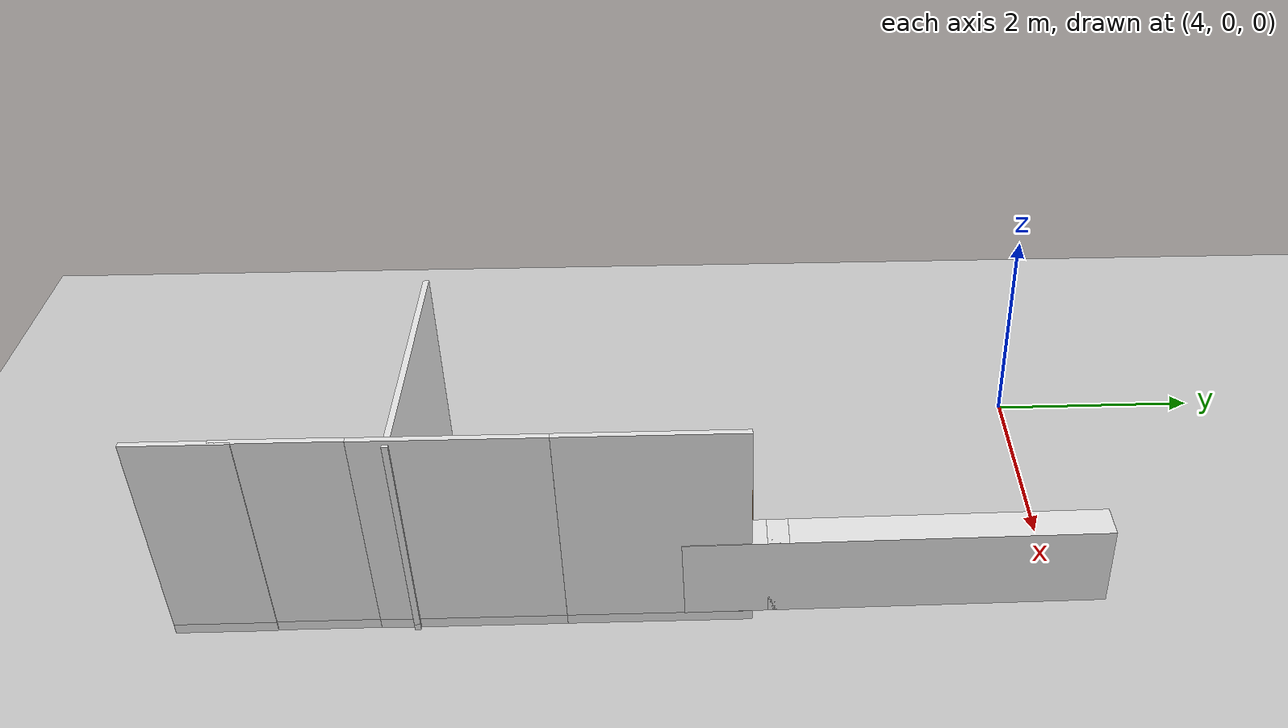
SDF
<sdf version="1.6">
 <world name="default">
  <model name="ground_plane">
   <static>1</static>
   <link name="link">
    <collision name="collision">
     <geometry><plane><normal>0 0 1</normal><size>100 100</size></plane></geometry>
     <surface><friction><ode><mu>100</mu><mu2>50</mu2></ode></friction></surface>
    </collision>
    <visual name="visual">
     <cast_shadows>0</cast_shadows>
     <geometry><plane><normal>0 0 1</normal><size>100 100</size></plane></geometry>
     <material>
      <script><uri>file://media/materials/scripts/gazebo.material</uri><name>Gazebo/Grey</name></script>
     </material>
    </visual>
   </link>
  </model>
  <model name="full_wall_55_6475_bedroom">
   <link name="link">
    <pose>0 2.44347 0 0 -0 0</pose>
    <inertial>
     <mass>12.7126</mass>
     <inertia><ixx>0</ixx><ixy>0</ixy><ixz>0</ixz><iyy>0</iyy><iyz>0</iyz><izz>0</izz></inertia>
    </inertial>
    <velocity_decay><linear>0</linear><angular>0</angular></velocity_decay>
    <visual name="bottom_frame">
     <pose>0 0 0.05 0 -0 0</pose>
     <geometry><box><size>0.055 1.64629 0.1</size></box></geometry>
     <material>
      <script><uri>model://base_materials/color/scripts</uri><name>hsr_color/white</name></script>
      <ambient>1 1 1 1</ambient>
      <diffuse>0.5 0.5 0.5 1</diffuse>
      <specular>0 0 0 1</specular>
      <emissive>0 0 0 1</emissive>
     </material>
    </visual>
    <visual name="wall">
     <pose>0 0 1.095 0 -0 0</pose>
     <geometry><box><size>0.055 1.64629 1.99</size></box></geometry>
     <material>
      <script>
       <uri>model://base_materials/wall/scripts</uri>
       <uri>model://base_materials/wall/textures</uri>
       <name>wall/white_noise</name>
      </script>
      <ambient>1 1 1 1</ambient>
      <diffuse>0.5 0.5 0.5 1</diffuse>
      <specular>0 0 0 1</specular>
      <emissive>0 0 0 1</emissive>
     </material>
    </visual>
    <collision name="collision_bottom_frame">
     <pose>0 0 0.05 0 -0 0</pose>
     <geometry><box><size>0.055 1.64629 0.1</size></box></geometry>
     <surface>
      <friction>
       <ode><mu>1</mu><mu2>1</mu2><fdir1>0 0 0</fdir1><slip1>0</slip1><slip2>0</slip2></ode>
       <torsional>
        <coefficient>1</coefficient>
        <patch_radius>0</patch_radius>
        <surface_radius>0</surface_radius>
        <use_patch_radius>1</use_patch_radius>
        <ode><slip>0</slip></ode>
       </torsional>
      </friction>
      <bounce><restitution_coefficient>0</restitution_coefficient><threshold>1e+06</threshold></bounce>
      <contact>
       <collide_without_contact>0</collide_without_contact>
       <collide_without_contact_bitmask>1</collide_without_contact_bitmask>
       <collide_bitmask>1</collide_bitmask>
       <ode>
        <soft_cfm>0</soft_cfm>
        <soft_erp>0.2</soft_erp>
        <kp>1e+13</kp>
        <kd>1</kd>
        <max_vel>0.01</max_vel>
        <min_depth>0</min_depth>
       </ode>
       <bullet>
        <split_impulse>1</split_impulse>
        <split_impulse_penetration_threshold>-0.01</split_impulse_penetration_threshold>
        <soft_cfm>0</soft_cfm>
        <soft_erp>0.2</soft_erp>
        <kp>1e+13</kp>
        <kd>1</kd>
       </bullet>
      </contact>
     </surface>
    </collision>
    <collision name="collision_wall">
     <pose>0 0 1.095 0 -0 0</pose>
     <geometry><box><size>0.055 1.64629 1.99</size></box></geometry>
     <surface>
      <friction>
       <ode><mu>1</mu><mu2>1</mu2><fdir1>0 0 0</fdir1><slip1>0</slip1><slip2>0</slip2></ode>
       <torsional>
        <coefficient>1</coefficient>
        <patch_radius>0</patch_radius>
        <surface_radius>0</surface_radius>
        <use_patch_radius>1</use_patch_radius>
        <ode><slip>0</slip></ode>
       </torsional>
      </friction>
      <bounce><restitution_coefficient>0</restitution_coefficient><threshold>1e+06</threshold></bounce>
      <contact>
       <collide_without_contact>0</collide_without_contact>
       <collide_without_contact_bitmask>1</collide_without_contact_bitmask>
       <collide_bitmask>1</collide_bitmask>
       <ode>
        <soft_cfm>0</soft_cfm>
        <soft_erp>0.2</soft_erp>
        <kp>1e+13</kp>
        <kd>1</kd>
        <max_vel>0.01</max_vel>
        <min_depth>0</min_depth>
       </ode>
       <bullet>
        <split_impulse>1</split_impulse>
        <split_impulse_penetration_threshold>-0.01</split_impulse_penetration_threshold>
        <soft_cfm>0</soft_cfm>
        <soft_erp>0.2</soft_erp>
        <kp>1e+13</kp>
        <kd>1</kd>
       </bullet>
      </contact>
     </surface>
    </collision>
   </link>
   <static>1</static>
   <pose>7.0633 -7.6556 0 0 -0 0</pose>
  </model>
  <model name="full_wall_55_6475_bedroom_clone">
   <link name="link">
    <pose>0 2.44347 0 0 -0 0</pose>
    <inertial>
     <mass>12.7126</mass>
     <inertia><ixx>0</ixx><ixy>0</ixy><ixz>0</ixz><iyy>0</iyy><iyz>0</iyz><izz>0</izz></inertia>
    </inertial>
    <velocity_decay><linear>0</linear><angular>0</angular></velocity_decay>
    <visual name="bottom_frame">
     <pose>0 0 0.05 0 -0 0</pose>
     <geometry><box><size>0.055 1.64629 0.1</size></box></geometry>
     <material>
      <script><uri>model://base_materials/color/scripts</uri><name>hsr_color/white</name></script>
      <ambient>1 1 1 1</ambient>
      <diffuse>0.5 0.5 0.5 1</diffuse>
      <specular>0 0 0 1</specular>
      <emissive>0 0 0 1</emissive>
     </material>
    </visual>
    <visual name="wall">
     <pose>0 0 1.095 0 -0 0</pose>
     <geometry><box><size>0.055 1.64629 1.99</size></box></geometry>
     <material>
      <script>
       <uri>model://base_materials/wall/scripts</uri>
       <uri>model://base_materials/wall/textures</uri>
       <name>wall/white_noise</name>
      </script>
      <ambient>1 1 1 1</ambient>
      <diffuse>0.5 0.5 0.5 1</diffuse>
      <specular>0 0 0 1</specular>
      <emissive>0 0 0 1</emissive>
     </material>
    </visual>
    <collision name="collision_bottom_frame">
     <pose>0 0 0.05 0 -0 0</pose>
     <geometry><box><size>0.055 1.64629 0.1</size></box></geometry>
     <surface>
      <friction>
       <ode><mu>1</mu><mu2>1</mu2><fdir1>0 0 0</fdir1><slip1>0</slip1><slip2>0</slip2></ode>
       <torsional>
        <coefficient>1</coefficient>
        <patch_radius>0</patch_radius>
        <surface_radius>0</surface_radius>
        <use_patch_radius>1</use_patch_radius>
        <ode><slip>0</slip></ode>
       </torsional>
      </friction>
      <bounce><restitution_coefficient>0</restitution_coefficient><threshold>1e+06</threshold></bounce>
      <contact>
       <collide_without_contact>0</collide_without_contact>
       <collide_without_contact_bitmask>1</collide_without_contact_bitmask>
       <collide_bitmask>1</collide_bitmask>
       <ode>
        <soft_cfm>0</soft_cfm>
        <soft_erp>0.2</soft_erp>
        <kp>1e+13</kp>
        <kd>1</kd>
        <max_vel>0.01</max_vel>
        <min_depth>0</min_depth>
       </ode>
       <bullet>
        <split_impulse>1</split_impulse>
        <split_impulse_penetration_threshold>-0.01</split_impulse_penetration_threshold>
        <soft_cfm>0</soft_cfm>
        <soft_erp>0.2</soft_erp>
        <kp>1e+13</kp>
        <kd>1</kd>
       </bullet>
      </contact>
     </surface>
    </collision>
    <collision name="collision_wall">
     <pose>0 0 1.095 0 -0 0</pose>
     <geometry><box><size>0.055 1.64629 1.99</size></box></geometry>
     <surface>
      <friction>
       <ode><mu>1</mu><mu2>1</mu2><fdir1>0 0 0</fdir1><slip1>0</slip1><slip2>0</slip2></ode>
       <torsional>
        <coefficient>1</coefficient>
        <patch_radius>0</patch_radius>
        <surface_radius>0</surface_radius>
        <use_patch_radius>1</use_patch_radius>
        <ode><slip>0</slip></ode>
       </torsional>
      </friction>
      <bounce><restitution_coefficient>0</restitution_coefficient><threshold>1e+06</threshold></bounce>
      <contact>
       <collide_without_contact>0</collide_without_contact>
       <collide_without_contact_bitmask>1</collide_without_contact_bitmask>
       <collide_bitmask>1</collide_bitmask>
       <ode>
        <soft_cfm>0</soft_cfm>
        <soft_erp>0.2</soft_erp>
        <kp>1e+13</kp>
        <kd>1</kd>
        <max_vel>0.01</max_vel>
        <min_depth>0</min_depth>
       </ode>
       <bullet>
        <split_impulse>1</split_impulse>
        <split_impulse_penetration_threshold>-0.01</split_impulse_penetration_threshold>
        <soft_cfm>0</soft_cfm>
        <soft_erp>0.2</soft_erp>
        <kp>1e+13</kp>
        <kd>1</kd>
       </bullet>
      </contact>
     </surface>
    </collision>
   </link>
   <static>1</static>
   <pose>7.0618 -6.01135 0 0 -0 0</pose>
  </model>
  <model name="full_wall_55_1100_2090_6">
   <link name="link">
    <inertial>
     <mass>50</mass>
     <inertia><ixx>1</ixx><ixy>0</ixy><ixz>0</ixz><iyy>1</iyy><iyz>0</iyz><izz>1</izz></inertia>
    </inertial>
    <visual name="bottom_frame">
     <pose>0 0 0.05 0 -0 0</pose>
     <geometry><box><size>0.055 1.1 0.1</size></box></geometry>
     <material>
      <script><uri>model://base_materials/color/scripts</uri><name>hsr_color/white</name></script>
     </material>
    </visual>
    <collision name="collision_bottom_frame">
     <pose>0 0 0.05 0 -0 0</pose>
     <geometry><box><size>0.055 1.1 0.1</size></box></geometry>
    </collision>
    <visual name="wall">
     <pose>0 0 1.095 0 -0 0</pose>
     <geometry><box><size>0.055 1.1 1.99</size></box></geometry>
     <material>
      <script>
       <uri>model://base_materials/wall/scripts</uri>
       <uri>model://base_materials/wall/textures</uri>
       <name>wall/white_noise</name>
      </script>
     </material>
    </visual>
    <collision name="collision_wall">
     <pose>0 0 1.095 0 -0 0</pose>
     <geometry><box><size>0.055 1.1 1.99</size></box></geometry>
    </collision>
    <velocity_decay><linear>0</linear><angular>0</angular></velocity_decay>
   </link>
   <static>1</static>
   <pose>7.05797 -6.58558 0 0 -0 0</pose>
  </model>
  <model name="full_wall_55_900_2090_2">
   <link name="link">
    <inertial>
     <mass>50</mass>
     <inertia><ixx>1</ixx><ixy>0</ixy><ixz>0</ixz><iyy>1</iyy><iyz>0</iyz><izz>1</izz></inertia>
    </inertial>
    <visual name="bottom_frame">
     <pose>0 0 0.05 0 -0 0</pose>
     <geometry><box><size>0.055 0.9 0.1</size></box></geometry>
     <material>
      <script><uri>model://base_materials/color/scripts</uri><name>hsr_color/white</name></script>
     </material>
    </visual>
    <collision name="collision_bottom_frame">
     <pose>0 0 0.05 0 -0 0</pose>
     <geometry><box><size>0.055 0.9 0.1</size></box></geometry>
    </collision>
    <visual name="wall">
     <pose>0 0 1.095 0 -0 0</pose>
     <geometry><box><size>0.055 0.9 1.99</size></box></geometry>
     <material>
      <script>
       <uri>model://base_materials/wall/scripts</uri>
       <uri>model://base_materials/wall/textures</uri>
       <name>wall/white_noise</name>
      </script>
     </material>
    </visual>
    <collision name="collision_wall">
     <pose>0 0 1.095 0 -0 0</pose>
     <geometry><box><size>0.055 0.9 1.99</size></box></geometry>
    </collision>
    <velocity_decay><linear>0</linear><angular>0</angular></velocity_decay>
   </link>
   <static>1</static>
   <pose>7.0657 -7.39424 0 0 -0 0</pose>
  </model>
  <model name="office_desk">
   <link name="link">
    <inertial>
     <mass>10</mass>
     <inertia><ixx>1</ixx><ixy>0</ixy><ixz>0</ixz><iyy>1</iyy><iyz>0</iyz><izz>1</izz></inertia>
    </inertial>
    <visual name="top_board">
     <pose>-0.3 0.6 0.69 0 -0 0</pose>
     <geometry><box><size>0.6 1.2 0.02</size></box></geometry>
     <material>
      <script>
       <uri>model://base_materials/wood/scripts/wood.material</uri>
       <name>base_materials/dark_wood</name>
      </script>
     </material>
    </visual>
    <collision name="collision_top_board">
     <pose>-0.3 0.6 0.69 0 -0 0</pose>
     <geometry><box><size>0.6 1.2 0.02</size></box></geometry>
    </collision>
    <visual name="left_board">
     <pose>-0.3 0.01 0.34 0 -0 0</pose>
     <geometry><box><size>0.6 0.02 0.68</size></box></geometry>
     <material>
      <script>
       <uri>model://base_materials/wood/scripts/wood.material</uri>
       <name>base_materials/dark_wood</name>
      </script>
     </material>
    </visual>
    <collision name="collision_left_board">
     <pose>-0.3 0.01 0.34 0 -0 0</pose>
     <geometry><box><size>0.6 0.02 0.68</size></box></geometry>
    </collision>
    <visual name="right_board">
     <pose>-0.3 1.19 0.34 0 -0 0</pose>
     <geometry><box><size>0.6 0.02 0.68</size></box></geometry>
     <material>
      <script>
       <uri>model://base_materials/wood/scripts/wood.material</uri>
       <name>base_materials/dark_wood</name>
      </script>
     </material>
    </visual>
    <collision name="collision_right_board">
     <pose>-0.3 1.19 0.34 0 -0 0</pose>
     <geometry><box><size>0.6 0.02 0.68</size></box></geometry>
    </collision>
    <visual name="center_board">
     <pose>-0.14 0.6 0.49 0 -0 0</pose>
     <geometry><box><size>0.02 1.16 0.4</size></box></geometry>
     <material>
      <script>
       <uri>model://base_materials/wood/scripts/wood.material</uri>
       <name>base_materials/dark_wood</name>
      </script>
     </material>
    </visual>
    <collision name="ollision_center_board">
     <pose>-0.14 0.6 0.49 0 -0 0</pose>
     <geometry><box><size>0.02 1.16 0.4</size></box></geometry>
    </collision>
    <velocity_decay><linear>0</linear><angular>0</angular></velocity_decay>
   </link>
   <static>1</static>
   <pose>5.54063 -4.0713 0 0 0 -1.54079</pose>
  </model>
  <model name="wagon_with_marker">
   <link name="link">
    <inertial>
     <mass>10</mass>
     <inertia><ixx>1</ixx><ixy>0</ixy><ixz>0</ixz><iyy>1</iyy><iyz>0</iyz><izz>1</izz></inertia>
    </inertial>
    <visual name="left_board">
     <pose>-0.2325 0.01 0.345 0 -0 0</pose>
     <geometry><box><size>0.415 0.02 0.59</size></box></geometry>
     <material>
      <script><uri>model://base_materials/wood/scripts/wood.material</uri><name>base_materials/wood</name></script>
     </material>
    </visual>
    <collision name="collision_left_board">
     <pose>-0.2325 0.01 0.345 0 -0 0</pose>
     <geometry><box><size>0.415 0.02 0.59</size></box></geometry>
    </collision>
    <visual name="right_board">
     <pose>-0.2325 0.4325 0.345 0 -0 0</pose>
     <geometry><box><size>0.415 0.02 0.59</size></box></geometry>
     <material>
      <script><uri>model://base_materials/wood/scripts/wood.material</uri><name>base_materials/wood</name></script>
     </material>
    </visual>
    <collision name="collision_right_board">
     <pose>-0.2325 0.4325 0.345 0 -0 0</pose>
     <geometry><box><size>0.415 0.02 0.59</size></box></geometry>
    </collision>
    <visual name="top_board">
     <pose>-0.22 0.2225 0.655 0 -0 0</pose>
     <geometry><box><size>0.44 0.445 0.03</size></box></geometry>
     <material>
      <script><uri>model://base_materials/wood/scripts/wood.material</uri><name>base_materials/wood</name></script>
     </material>
    </visual>
    <collision name="collision_top_board">
     <pose>-0.22 0.2225 0.655 0 -0 0</pose>
     <geometry><box><size>0.44 0.445 0.03</size></box></geometry>
    </collision>
    <visual name="back_board">
     <pose>-0.425 0.2225 0.345 0 -0 0</pose>
     <geometry><box><size>0.02 0.405 0.59</size></box></geometry>
     <material>
      <script><uri>model://base_materials/wood/scripts/wood.material</uri><name>base_materials/wood</name></script>
     </material>
    </visual>
    <collision name="collision_back_board">
     <pose>-0.425 0.2225 0.345 0 -0 0</pose>
     <geometry><box><size>0.02 0.405 0.59</size></box></geometry>
    </collision>
    <visual name="bottom_board">
     <pose>-0.2325 0.2225 0.06 0 -0 0</pose>
     <geometry><box><size>0.415 0.405 0.02</size></box></geometry>
     <material>
      <script><uri>model://base_materials/wood/scripts/wood.material</uri><name>base_materials/wood</name></script>
     </material>
    </visual>
    <collision name="collision_bottom_board">
     <pose>-0.2325 0.2225 0.06 0 -0 0</pose>
     <geometry><box><size>0.415 0.405 0.02</size></box></geometry>
    </collision>
    <visual name="1st_drawer">
     <pose>-0.0125 0.2225 0.57 0 -0 0</pose>
     <geometry><box><size>0.025 0.445 0.14</size></box></geometry>
     <material>
      <script><uri>model://base_materials/wood/scripts/wood.material</uri><name>base_materials/wood</name></script>
     </material>
    </visual>
    <collision name="collision_1st_drawer">
     <pose>-0.0125 0.2225 0.57 0 -0 0</pose>
     <geometry><box><size>0.025 0.445 0.14</size></box></geometry>
    </collision>
    <visual name="1st_drawer_handle_l1">
     <pose>0.0115 0.1895 0.6 3.14159 1.57079 3.14159</pose>
     <geometry><cylinder><radius>0.007</radius><length>0.023</length></cylinder></geometry>
     <material>
      <ambient>0.18431 0.3098 0.3098 1</ambient>
      <diffuse>0.18431 0.3098 0.3098 1</diffuse>
      <specular>0.1 0.1 0.1 1</specular>
     </material>
    </visual>
    <collision name="collision_1st_drawer_handle_l1">
     <pose>0.0115 0.1895 0.6 3.14159 1.57079 3.14159</pose>
     <geometry><cylinder><radius>0.007</radius><length>0.023</length></cylinder></geometry>
    </collision>
    <visual name="1st_drawer_handle_l2">
     <pose>0.023 0.1895 0.6 0 -0 0</pose>
     <geometry><sphere><radius>0.007</radius></sphere></geometry>
     <material>
      <ambient>0.18431 0.3098 0.3098 1</ambient>
      <diffuse>0.18431 0.3098 0.3098 1</diffuse>
      <specular>0.1 0.1 0.1 1</specular>
     </material>
    </visual>
    <collision name="collision_1st_drawer_handle_l2">
     <pose>0.023 0.1895 0.6 0 -0 0</pose>
     <geometry><sphere><radius>0.007</radius></sphere></geometry>
    </collision>
    <visual name="1st_drawer_handle_r1">
     <pose>0.0115 0.2555 0.6 3.14159 1.57079 3.14159</pose>
     <geometry><cylinder><radius>0.007</radius><length>0.023</length></cylinder></geometry>
     <material>
      <ambient>0.18431 0.3098 0.3098 1</ambient>
      <diffuse>0.18431 0.3098 0.3098 1</diffuse>
      <specular>0.1 0.1 0.1 1</specular>
     </material>
    </visual>
    <collision name="collision_1st_drawer_handle_r1">
     <pose>0.0115 0.2555 0.6 3.14159 1.57079 3.14159</pose>
     <geometry><cylinder><radius>0.007</radius><length>0.023</length></cylinder></geometry>
    </collision>
    <visual name="1st_drawer_handle_r2">
     <pose>0.023 0.2555 0.6 0 -0 0</pose>
     <geometry><sphere><radius>0.007</radius></sphere></geometry>
     <material>
      <ambient>0.18431 0.3098 0.3098 1</ambient>
      <diffuse>0.18431 0.3098 0.3098 1</diffuse>
      <specular>0.1 0.1 0.1 1</specular>
     </material>
    </visual>
    <collision name="collision_1st_drawer_handle_r2">
     <pose>0.023 0.2555 0.6 0 -0 0</pose>
     <geometry><sphere><radius>0.007</radius></sphere></geometry>
    </collision>
    <visual name="1st_drawer_handle_center">
     <pose>0.023 0.2225 0.6 1.5708 -0 0</pose>
     <geometry><cylinder><radius>0.007</radius><length>0.066</length></cylinder></geometry>
     <material>
      <ambient>0.18431 0.3098 0.3098 1</ambient>
      <diffuse>0.18431 0.3098 0.3098 1</diffuse>
      <specular>0.1 0.1 0.1 1</specular>
     </material>
    </visual>
    <collision name="collision_1st_drawer_handle_center">
     <pose>0.023 0.2225 0.6 1.5708 -0 0</pose>
     <geometry><cylinder><radius>0.007</radius><length>0.066</length></cylinder></geometry>
    </collision>
    <visual name="2nd_drawer">
     <pose>-0.0125 0.2225 0.275 0 -0 0</pose>
     <geometry><box><size>0.025 0.445 0.45</size></box></geometry>
     <material>
      <script><uri>model://base_materials/wood/scripts/wood.material</uri><name>base_materials/wood</name></script>
     </material>
    </visual>
    <collision name="collision_2nd_drawer">
     <pose>-0.0125 0.2225 0.275 0 -0 0</pose>
     <geometry><box><size>0.025 0.445 0.45</size></box></geometry>
    </collision>
    <visual name="2nd_drawer_handle_top1">
     <pose>0.0115 0.04 0.47 3.14159 1.57079 3.14159</pose>
     <geometry><cylinder><radius>0.007</radius><length>0.023</length></cylinder></geometry>
     <material>
      <ambient>0.18431 0.3098 0.3098 1</ambient>
      <diffuse>0.18431 0.3098 0.3098 1</diffuse>
      <specular>0.1 0.1 0.1 1</specular>
     </material>
    </visual>
    <collision name="collision_2nd_drawer_handle_top1">
     <pose>0.0115 0.04 0.47 3.14159 1.57079 3.14159</pose>
     <geometry><cylinder><radius>0.007</radius><length>0.023</length></cylinder></geometry>
    </collision>
    <visual name="2nd_drawer_handle_top2">
     <pose>0.023 0.04 0.47 0 -0 0</pose>
     <geometry><sphere><radius>0.007</radius></sphere></geometry>
     <material>
      <ambient>0.18431 0.3098 0.3098 1</ambient>
      <diffuse>0.18431 0.3098 0.3098 1</diffuse>
      <specular>0.1 0.1 0.1 1</specular>
     </material>
    </visual>
    <collision name="2nd_drawer_handle_top2">
     <pose>0.023 0.04 0.47 0 -0 0</pose>
     <geometry><sphere><radius>0.007</radius></sphere></geometry>
    </collision>
    <visual name="2nd_drawer_handle_bottom1">
     <pose>0.0115 0.04 0.404 3.14159 1.57079 3.14159</pose>
     <geometry><cylinder><radius>0.007</radius><length>0.023</length></cylinder></geometry>
     <material>
      <ambient>0.18431 0.3098 0.3098 1</ambient>
      <diffuse>0.18431 0.3098 0.3098 1</diffuse>
      <specular>0.1 0.1 0.1 1</specular>
     </material>
    </visual>
    <collision name="collision_2nd_drawer_handle_bottom1">
     <pose>0.0115 0.04 0.404 3.14159 1.57079 3.14159</pose>
     <geometry><cylinder><radius>0.007</radius><length>0.023</length></cylinder></geometry>
    </collision>
    <visual name="2nd_drawer_handle_bottom2">
     <pose>0.023 0.04 0.404 0 -0 0</pose>
     <geometry><sphere><radius>0.007</radius></sphere></geometry>
     <material>
      <ambient>0.18431 0.3098 0.3098 1</ambient>
      <diffuse>0.18431 0.3098 0.3098 1</diffuse>
      <specular>0.1 0.1 0.1 1</specular>
     </material>
    </visual>
    <collision name="2nd_drawer_handle_bottom2">
     <pose>0.023 0.04 0.404 0 -0 0</pose>
     <geometry><sphere><radius>0.007</radius></sphere></geometry>
    </collision>
    <visual name="2nd_drawer_handle_center">
     <pose>0.023 0.04 0.437 0 -0 0</pose>
     <geometry><cylinder><radius>0.007</radius><length>0.066</length></cylinder></geometry>
     <material>
      <ambient>0.18431 0.3098 0.3098 1</ambient>
      <diffuse>0.18431 0.3098 0.3098 1</diffuse>
      <specular>0.1 0.1 0.1 1</specular>
     </material>
    </visual>
    <collision name="collision_2nd_drawer_handle_center">
     <pose>0.023 0.04 0.437 0 -0 0</pose>
     <geometry><cylinder><radius>0.007</radius><length>0.066</length></cylinder></geometry>
    </collision>
    <visual name="left_front_caster">
     <pose>-0.07 0.025 0.025 3.14159 1.57079 3.14159</pose>
     <geometry><cylinder><radius>0.025</radius><length>0.035</length></cylinder></geometry>
     <material><script><name>Gazebo/Black</name><uri>__default__</uri></script></material>
    </visual>
    <collision name="collision_left_front_caster">
     <pose>-0.07 0.025 0.025 3.14159 1.57079 3.14159</pose>
     <geometry><cylinder><radius>0.025</radius><length>0.035</length></cylinder></geometry>
    </collision>
    <visual name="right_front_caster">
     <pose>-0.07 0.42 0.025 3.14159 1.57079 3.14159</pose>
     <geometry><cylinder><radius>0.025</radius><length>0.035</length></cylinder></geometry>
     <material><script><name>Gazebo/Black</name><uri>__default__</uri></script></material>
    </visual>
    <collision name="collision_right_front_caster">
     <pose>-0.07 0.42 0.025 3.14159 1.57079 3.14159</pose>
     <geometry><cylinder><radius>0.025</radius><length>0.035</length></cylinder></geometry>
    </collision>
    <visual name="left_back_caster">
     <pose>-0.39 0.025 0.025 3.14159 1.57079 3.14159</pose>
     <geometry><cylinder><radius>0.025</radius><length>0.035</length></cylinder></geometry>
     <material><script><name>Gazebo/Black</name><uri>__default__</uri></script></material>
    </visual>
    <collision name="collision_left_back_caster">
     <pose>-0.39 0.025 0.025 3.14159 1.57079 3.14159</pose>
     <geometry><cylinder><radius>0.025</radius><length>0.035</length></cylinder></geometry>
    </collision>
    <visual name="right_back_caster">
     <pose>-0.39 0.42 0.025 3.14159 1.57079 3.14159</pose>
     <geometry><cylinder><radius>0.025</radius><length>0.035</length></cylinder></geometry>
     <material><script><name>Gazebo/Black</name><uri>__default__</uri></script></material>
    </visual>
    <collision name="collision_right_back_caster">
     <pose>-0.39 0.42 0.025 3.14159 1.57079 3.14159</pose>
     <geometry><cylinder><radius>0.025</radius><length>0.035</length></cylinder></geometry>
    </collision>
    <visual name="marker_0012">
     <pose>0 0.045 0.595 3.14159 1.57079 -9.3e-05</pose>
     <geometry><box><size>0.09 0.09 0.0001</size></box></geometry>
     <material>
      <script>
       <uri>model://marker/0012/scripts</uri>
       <uri>model://marker/0012/textures</uri>
       <name>Marker/0012</name>
      </script>
     </material>
    </visual>
    <velocity_decay><linear>0</linear><angular>0</angular></velocity_decay>
   </link>
   <static>1</static>
   <pose>5.70521 -3.13383 0 0.000182 -0.005186 -1.60578</pose>
  </model>
  <model name="full_wall_bedroom_dinning_clone">
   <link name="link">
    <pose>0 -0.717261 0 0 -0 0</pose>
    <inertial>
     <mass>141.74</mass>
     <inertia><ixx>123.66</ixx><ixy>0</ixy><ixz>0</ixz><iyy>46.811</iyy><iyz>0</iyz><izz>76.9205</izz></inertia>
    </inertial>
    <velocity_decay><linear>0</linear><angular>0</angular></velocity_decay>
    <visual name="wall">
     <pose>0 0 1.095 0 -0 0</pose>
     <geometry><box><size>0.055 2.55132 1.99</size></box></geometry>
     <material>
      <script>
       <uri>model://base_materials/wall/scripts</uri>
       <uri>model://base_materials/wall/textures</uri>
       <name>wall/white_noise</name>
      </script>
      <ambient>1 1 1 1</ambient>
      <diffuse>0.5 0.5 0.5 1</diffuse>
      <specular>0 0 0 1</specular>
      <emissive>0 0 0 1</emissive>
     </material>
    </visual>
    <visual name="bottom_frame">
     <pose>0 0 0.05 0 -0 0</pose>
     <geometry><box><size>0.055 2.55132 0.1</size></box></geometry>
     <material>
      <script><uri>model://base_materials/color/scripts</uri><name>hsr_color/white</name></script>
      <ambient>1 1 1 1</ambient>
      <diffuse>0.5 0.5 0.5 1</diffuse>
      <specular>0 0 0 1</specular>
      <emissive>0 0 0 1</emissive>
     </material>
    </visual>
    <collision name="collision_bottom_frame">
     <pose>0 0 0.05 0 -0 0</pose>
     <geometry><box><size>0.055 2.55132 0.1</size></box></geometry>
     <surface>
      <friction>
       <ode><mu>1</mu><mu2>1</mu2><fdir1>0 0 0</fdir1><slip1>0</slip1><slip2>0</slip2></ode>
       <torsional>
        <coefficient>1</coefficient>
        <patch_radius>0</patch_radius>
        <surface_radius>0</surface_radius>
        <use_patch_radius>1</use_patch_radius>
        <ode><slip>0</slip></ode>
       </torsional>
      </friction>
      <bounce><restitution_coefficient>0</restitution_coefficient><threshold>1e+06</threshold></bounce>
      <contact>
       <collide_without_contact>0</collide_without_contact>
       <collide_without_contact_bitmask>1</collide_without_contact_bitmask>
       <collide_bitmask>1</collide_bitmask>
       <ode>
        <soft_cfm>0</soft_cfm>
        <soft_erp>0.2</soft_erp>
        <kp>1e+13</kp>
        <kd>1</kd>
        <max_vel>0.01</max_vel>
        <min_depth>0</min_depth>
       </ode>
       <bullet>
        <split_impulse>1</split_impulse>
        <split_impulse_penetration_threshold>-0.01</split_impulse_penetration_threshold>
        <soft_cfm>0</soft_cfm>
        <soft_erp>0.2</soft_erp>
        <kp>1e+13</kp>
        <kd>1</kd>
       </bullet>
      </contact>
     </surface>
    </collision>
    <collision name="collision_wall">
     <pose>0 0 1.095 0 -0 0</pose>
     <geometry><box><size>0.055 2.55132 1.99</size></box></geometry>
     <surface>
      <friction>
       <ode><mu>1</mu><mu2>1</mu2><fdir1>0 0 0</fdir1><slip1>0</slip1><slip2>0</slip2></ode>
       <torsional>
        <coefficient>1</coefficient>
        <patch_radius>0</patch_radius>
        <surface_radius>0</surface_radius>
        <use_patch_radius>1</use_patch_radius>
        <ode><slip>0</slip></ode>
       </torsional>
      </friction>
      <bounce><restitution_coefficient>0</restitution_coefficient><threshold>1e+06</threshold></bounce>
      <contact>
       <collide_without_contact>0</collide_without_contact>
       <collide_without_contact_bitmask>1</collide_without_contact_bitmask>
       <collide_bitmask>1</collide_bitmask>
       <ode>
        <soft_cfm>0</soft_cfm>
        <soft_erp>0.2</soft_erp>
        <kp>1e+13</kp>
        <kd>1</kd>
        <max_vel>0.01</max_vel>
        <min_depth>0</min_depth>
       </ode>
       <bullet>
        <split_impulse>1</split_impulse>
        <split_impulse_penetration_threshold>-0.01</split_impulse_penetration_threshold>
        <soft_cfm>0</soft_cfm>
        <soft_erp>0.2</soft_erp>
        <kp>1e+13</kp>
        <kd>1</kd>
       </bullet>
      </contact>
     </surface>
    </collision>
   </link>
   <static>1</static>
   <pose>5.1258 -5.73277 -0.043333 0 -0 1.58042</pose>
  </model>
  <model name="nasal_inflammation_capsul">
   <link name="link">
    <inertial>
     <mass>0.1</mass>
     <inertia><ixx>0.0001</ixx><ixy>0</ixy><ixz>0</ixz><iyy>0.0001</iyy><iyz>0</iyz><izz>0.0001</izz></inertia>
    </inertial>
    <visual name="capsul">
     <geometry><box><size>0.083 0.135 0.026</size></box></geometry>
     <material>
      <script>
       <uri>model://nasal_inflammation_capsul/scripts</uri>
       <uri>model://nasal_inflammation_capsul/textures</uri>
       <name>oral_medicine/nasal_inflammation_capsule</name>
      </script>
     </material>
    </visual>
    <collision name="collision_capsul">
     <geometry><box><size>0.083 0.135 0.026</size></box></geometry>
     <surface>
      <bounce><restitution_coefficient>0.2</restitution_coefficient><threshold>0</threshold></bounce>
      <contact><ode><max_vel>10</max_vel></ode></contact>
     </surface>
    </collision>
    <velocity_decay><linear>0</linear><angular>0</angular></velocity_decay>
   </link>
   <static>0</static>
   <pose>5.7969 -2.76887 0.681111 -0.005149 4.5e-05 -1.9e-05</pose>
  </model>
  <model name="wall_under_window_clone">
   <link name="link">
    <pose>-1.16136 0.310894 0.451619 0 -0 0</pose>
    <inertial>
     <mass>50</mass>
     <inertia><ixx>1</ixx><ixy>0</ixy><ixz>0</ixz><iyy>1</iyy><iyz>0</iyz><izz>1</izz></inertia>
    </inertial>
    <velocity_decay><linear>0</linear><angular>0</angular></velocity_decay>
    <visual name="bottom_frame">
     <pose>0 0 0.05 0 -0 0</pose>
     <geometry><box><size>0.319933 0.784691 0.18978</size></box></geometry>
     <material>
      <script><uri>model://base_materials/color/scripts</uri><name>hsr_color/white</name></script>
      <ambient>1 1 1 1</ambient>
      <diffuse>0.5 0.5 0.5 1</diffuse>
      <specular>0 0 0 1</specular>
      <emissive>0 0 0 1</emissive>
     </material>
    </visual>
    <visual name="wall">
     <pose>0 0 1.095 0 -0 0</pose>
     <geometry><box><size>0.319933 0.784691 3.75641</size></box></geometry>
     <material>
      <script>
       <uri>model://base_materials/wall/scripts</uri>
       <uri>model://base_materials/wall/textures</uri>
       <name>wall/white_noise</name>
      </script>
      <ambient>1 1 1 1</ambient>
      <diffuse>0.5 0.5 0.5 1</diffuse>
      <specular>0 0 0 1</specular>
      <emissive>0 0 0 1</emissive>
     </material>
    </visual>
   </link>
   <static>1</static>
   <pose>8.10126 -3.02213 0.813506 -1.56017 0 0</pose>
  </model>
 </world>
</sdf>
